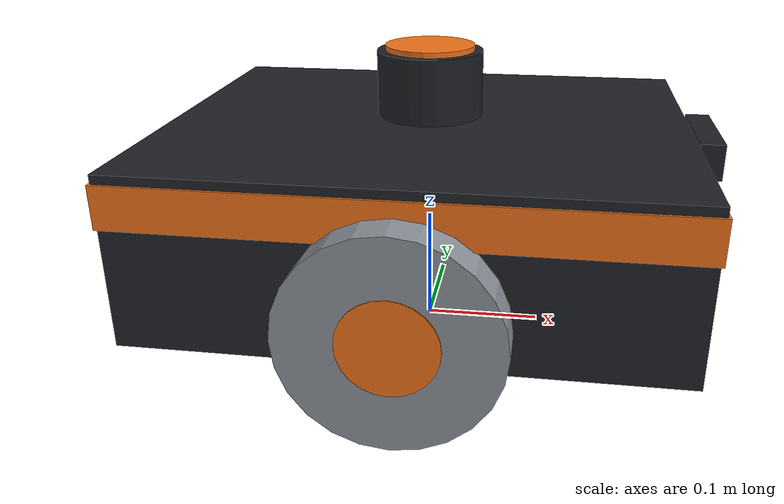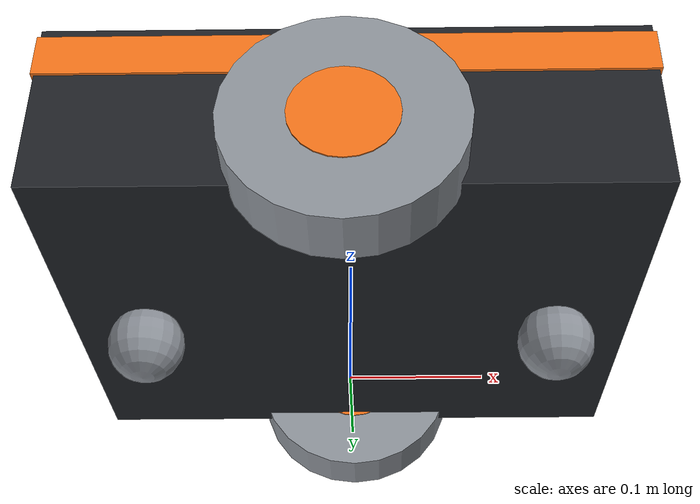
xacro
<?xml version="1.0"?>
<robot name="scout" xmlns:xacro="http://www.ros.org/wiki/xacro">

  <xacro:property name="base_length"   value="0.44"/>
  <xacro:property name="base_width"    value="0.36"/>
  <xacro:property name="base_height"   value="0.14"/>
  <xacro:property name="base_z"        value="0.12"/>
  <xacro:property name="base_mass"     value="3.0"/>

  <xacro:property name="wheel_radius"  value="0.085"/>
  <xacro:property name="wheel_width"   value="0.045"/>
  <xacro:property name="wheel_y"       value="0.19"/>
  <xacro:property name="wheel_mass"    value="0.30"/>

  <xacro:property name="caster_radius" value="0.03"/>
  <xacro:property name="caster_x"      value="0.16"/>
  <xacro:property name="caster_mass"   value="0.10"/>

  <material name="scout_dark">
    <color rgba="0.12 0.13 0.15 1.0"/>
  </material>
  <material name="scout_accent">
    <color rgba="0.95 0.45 0.10 1.0"/>
  </material>
  <material name="scout_grey">
    <color rgba="0.55 0.57 0.60 1.0"/>
  </material>

  <!-- ==================== base ==================== -->

  <link name="base_footprint"/>

  <joint name="base_footprint_joint" type="fixed">
    <parent link="base_footprint"/>
    <child link="base_link"/>
    <origin xyz="0 0 ${base_z}" rpy="0 0 0"/>
  </joint>

  <link name="base_link">
    <visual>
      <origin xyz="0 0 0" rpy="0 0 0"/>
      <geometry>
        <box size="${base_length} ${base_width} ${base_height}"/>
      </geometry>
      <material name="scout_dark"/>
    </visual>
    <!-- orange accent band so the robot reads clearly on camera -->
    <visual>
      <origin xyz="0 0 0.045" rpy="0 0 0"/>
      <geometry>
        <box size="${base_length + 0.004} ${base_width + 0.004} 0.035"/>
      </geometry>
      <material name="scout_accent"/>
    </visual>
    <collision>
      <origin xyz="0 0 0" rpy="0 0 0"/>
      <geometry>
        <box size="${base_length} ${base_width} ${base_height}"/>
      </geometry>
    </collision>
    <inertial>
      <origin xyz="0 0 0" rpy="0 0 0"/>
      <mass value="${base_mass}"/>
      <inertia ixx="0.0373" ixy="0" ixz="0"
               iyy="0.0533" iyz="0"
               izz="0.0808"/>
    </inertial>
  </link>

  <!-- ==================== drive wheels ==================== -->

  <xacro:macro name="drive_wheel" params="side mirror">
    <link name="${side}_wheel_link">
      <visual>
        <origin xyz="0 0 0" rpy="${pi/2} 0 0"/>
        <geometry>
          <cylinder radius="${wheel_radius}" length="${wheel_width}"/>
        </geometry>
        <material name="scout_grey"/>
      </visual>
      <!-- hub marker: makes wheel rotation visible in Gazebo -->
      <visual>
        <origin xyz="0 0 0" rpy="${pi/2} 0 0"/>
        <geometry>
          <cylinder radius="${wheel_radius * 0.45}" length="${wheel_width + 0.002}"/>
        </geometry>
        <material name="scout_accent"/>
      </visual>
      <collision>
        <origin xyz="0 0 0" rpy="${pi/2} 0 0"/>
        <geometry>
          <cylinder radius="${wheel_radius}" length="${wheel_width}"/>
        </geometry>
      </collision>
      <inertial>
        <origin xyz="0 0 0" rpy="${pi/2} 0 0"/>
        <mass value="${wheel_mass}"/>
        <inertia ixx="0.000593" ixy="0" ixz="0"
                 iyy="0.000593" iyz="0"
                 izz="0.001084"/>
      </inertial>
    </link>

    <joint name="${side}_wheel_joint" type="continuous">
      <parent link="base_link"/>
      <child link="${side}_wheel_link"/>
      <origin xyz="0 ${mirror * wheel_y} ${wheel_radius - base_z}" rpy="0 0 0"/>
      <axis xyz="0 1 0"/>
      <dynamics damping="0.02" friction="0.0"/>
    </joint>

    <!-- high lateral-axial grip for the drive wheels -->
    <gazebo reference="${side}_wheel_link">
      <mu1>1.2</mu1>
      <mu2>0.2</mu2>
      <material>
        <ambient>0.30 0.31 0.33 1</ambient>
        <diffuse>0.38 0.39 0.42 1</diffuse>
        <specular>0.2 0.2 0.2 1</specular>
      </material>
    </gazebo>
  </xacro:macro>

  <xacro:drive_wheel side="left"  mirror="1"/>
  <xacro:drive_wheel side="right" mirror="-1"/>

  <!-- ==================== casters ==================== -->

  <xacro:macro name="caster" params="name x_sign">
    <link name="${name}_caster_link">
      <visual>
        <origin xyz="0 0 0" rpy="0 0 0"/>
        <geometry>
          <sphere radius="${caster_radius}"/>
        </geometry>
        <material name="scout_grey"/>
      </visual>
      <collision>
        <origin xyz="0 0 0" rpy="0 0 0"/>
        <geometry>
          <sphere radius="${caster_radius}"/>
        </geometry>
      </collision>
      <inertial>
        <origin xyz="0 0 0" rpy="0 0 0"/>
        <mass value="${caster_mass}"/>
        <inertia ixx="0.000036" ixy="0" ixz="0"
                 iyy="0.000036" iyz="0"
                 izz="0.000036"/>
      </inertial>
    </link>

    <joint name="${name}_caster_joint" type="fixed">
      <parent link="base_link"/>
      <child link="${name}_caster_link"/>
      <origin xyz="${x_sign * caster_x} 0 ${caster_radius - base_z}" rpy="0 0 0"/>
    </joint>

    <!-- near-zero friction: a fixed sphere must slide, not drag -->
    <gazebo reference="${name}_caster_link">
      <mu1>0.001</mu1>
      <mu2>0.001</mu2>
    </gazebo>
  </xacro:macro>

  <xacro:caster name="front" x_sign="1"/>
  <xacro:caster name="rear"  x_sign="-1"/>

  <!-- ==================== lidar ==================== -->

  <link name="lidar_mast_link">
    <visual>
      <origin xyz="0 0 0.03" rpy="0 0 0"/>
      <geometry>
        <cylinder radius="0.018" length="0.06"/>
      </geometry>
      <material name="scout_grey"/>
    </visual>
    <collision>
      <origin xyz="0 0 0.03" rpy="0 0 0"/>
      <geometry>
        <cylinder radius="0.018" length="0.06"/>
      </geometry>
    </collision>
    <inertial>
      <origin xyz="0 0 0.03" rpy="0 0 0"/>
      <mass value="0.05"/>
      <inertia ixx="0.000015" ixy="0" ixz="0"
               iyy="0.000015" iyz="0"
               izz="0.000008"/>
    </inertial>
  </link>

  <joint name="lidar_mast_joint" type="fixed">
    <parent link="base_link"/>
    <child link="lidar_mast_link"/>
    <origin xyz="0 0 ${base_height/2 - 0.03}" rpy="0 0 0"/>
  </joint>

  <link name="lidar_link">
    <visual>
      <origin xyz="0 0 0" rpy="0 0 0"/>
      <geometry>
        <cylinder radius="0.045" length="0.055"/>
      </geometry>
      <material name="scout_dark"/>
    </visual>
    <visual>
      <origin xyz="0 0 0.029" rpy="0 0 0"/>
      <geometry>
        <cylinder radius="0.038" length="0.006"/>
      </geometry>
      <material name="scout_accent"/>
    </visual>
    <collision>
      <origin xyz="0 0 0" rpy="0 0 0"/>
      <geometry>
        <cylinder radius="0.045" length="0.055"/>
      </geometry>
    </collision>
    <inertial>
      <origin xyz="0 0 0" rpy="0 0 0"/>
      <mass value="0.20"/>
      <inertia ixx="0.000161" ixy="0" ixz="0"
               iyy="0.000161" iyz="0"
               izz="0.000203"/>
    </inertial>
  </link>

  <joint name="lidar_joint" type="fixed">
    <parent link="lidar_mast_link"/>
    <child link="lidar_link"/>
    <origin xyz="0 0 0.0625" rpy="0 0 0"/>
  </joint>

  <gazebo reference="lidar_link">
    <sensor name="lidar" type="gpu_lidar">
      <topic>scan</topic>
      <gz_frame_id>lidar_link</gz_frame_id>
      <always_on>true</always_on>
      <visualize>true</visualize>
      <update_rate>10</update_rate>
      <lidar>
        <scan>
          <horizontal>
            <samples>720</samples>
            <resolution>1</resolution>
            <min_angle>-3.14159265</min_angle>
            <max_angle>3.14159265</max_angle>
          </horizontal>
        </scan>
        <range>
          <min>0.12</min>
          <max>12.0</max>
          <resolution>0.01</resolution>
        </range>
        <noise>
          <type>gaussian</type>
          <mean>0.0</mean>
          <stddev>0.01</stddev>
        </noise>
      </lidar>
    </sensor>
  </gazebo>

  <!-- ==================== depth camera ==================== -->

  <link name="camera_link">
    <visual>
      <origin xyz="0 0 0" rpy="0 0 0"/>
      <geometry>
        <box size="0.02 0.09 0.03"/>
      </geometry>
      <material name="scout_dark"/>
    </visual>
    <collision>
      <origin xyz="0 0 0" rpy="0 0 0"/>
      <geometry>
        <box size="0.02 0.09 0.03"/>
      </geometry>
    </collision>
    <inertial>
      <origin xyz="0 0 0" rpy="0 0 0"/>
      <mass value="0.06"/>
      <inertia ixx="0.000005" ixy="0" ixz="0"
               iyy="0.000005" iyz="0"
               izz="0.000004"/>
    </inertial>
  </link>

  <joint name="camera_joint" type="fixed">
    <parent link="base_link"/>
    <child link="camera_link"/>
    <origin xyz="${base_length/2 + 0.012} 0 0.055" rpy="0 0 0"/>
  </joint>

  <gazebo reference="camera_link">
    <sensor name="camera" type="rgbd_camera">
      <topic>camera</topic>
      <gz_frame_id>camera_link</gz_frame_id>
      <always_on>true</always_on>
      <visualize>false</visualize>
      <update_rate>15</update_rate>
      <camera>
        <horizontal_fov>1.204</horizontal_fov>
        <image>
          <width>640</width>
          <height>480</height>
          <format>R8G8B8</format>
        </image>
        <clip>
          <near>0.05</near>
          <far>10.0</far>
        </clip>
        <depth_camera>
          <clip>
            <near>0.05</near>
            <far>10.0</far>
          </clip>
        </depth_camera>
      </camera>
    </sensor>
  </gazebo>

  <!-- ==================== Gazebo plugins ==================== -->

  <gazebo>
    <plugin filename="gz-sim-diff-drive-system"
            name="gz::sim::systems::DiffDrive">
      <left_joint>left_wheel_joint</left_joint>
      <right_joint>right_wheel_joint</right_joint>
      <wheel_separation>${2 * wheel_y}</wheel_separation>
      <wheel_radius>${wheel_radius}</wheel_radius>

      <max_linear_acceleration>1.0</max_linear_acceleration>
      <min_linear_acceleration>-1.0</min_linear_acceleration>
      <max_angular_acceleration>2.0</max_angular_acceleration>
      <min_angular_acceleration>-2.0</min_angular_acceleration>
      <max_linear_velocity>0.6</max_linear_velocity>
      <min_linear_velocity>-0.6</min_linear_velocity>
      <max_angular_velocity>1.6</max_angular_velocity>
      <min_angular_velocity>-1.6</min_angular_velocity>

      <topic>cmd_vel</topic>
      <odom_topic>odom</odom_topic>
      <tf_topic>tf</tf_topic>
      <frame_id>odom</frame_id>
      <child_frame_id>base_footprint</child_frame_id>
      <odom_publish_frequency>50</odom_publish_frequency>
    </plugin>

    <plugin filename="gz-sim-joint-state-publisher-system"
            name="gz::sim::systems::JointStatePublisher">
      <topic>joint_states</topic>
      <joint_name>left_wheel_joint</joint_name>
      <joint_name>right_wheel_joint</joint_name>
    </plugin>
  </gazebo>

  <gazebo reference="base_link">
    <material>
      <ambient>0.12 0.13 0.15 1</ambient>
      <diffuse>0.17 0.18 0.21 1</diffuse>
      <specular>0.10 0.10 0.10 1</specular>
    </material>
    <mu1>0.3</mu1>
    <mu2>0.3</mu2>
  </gazebo>

</robot>
